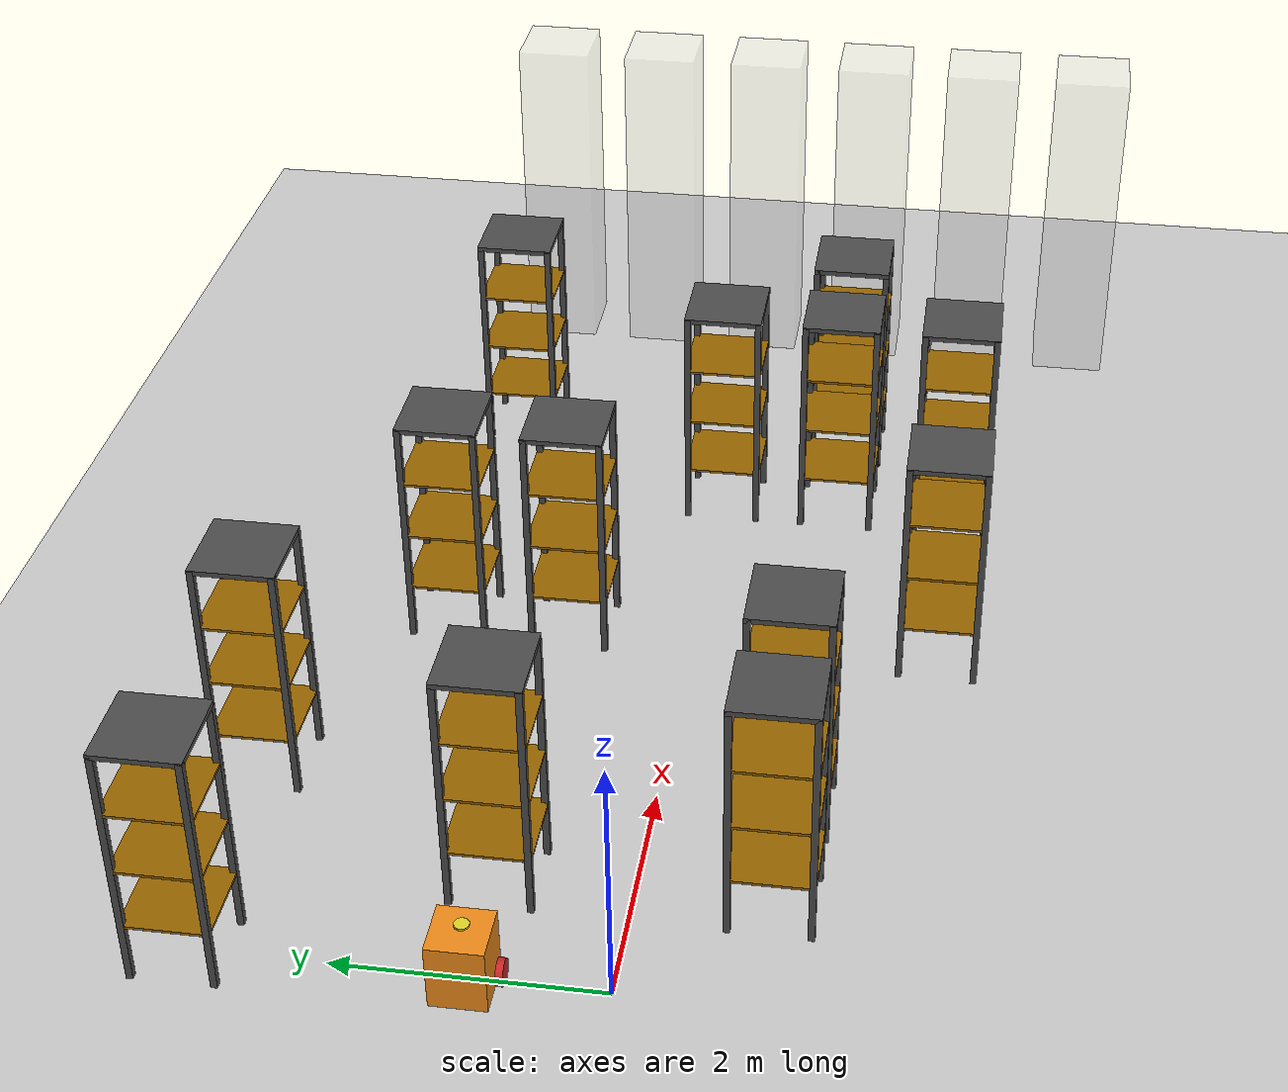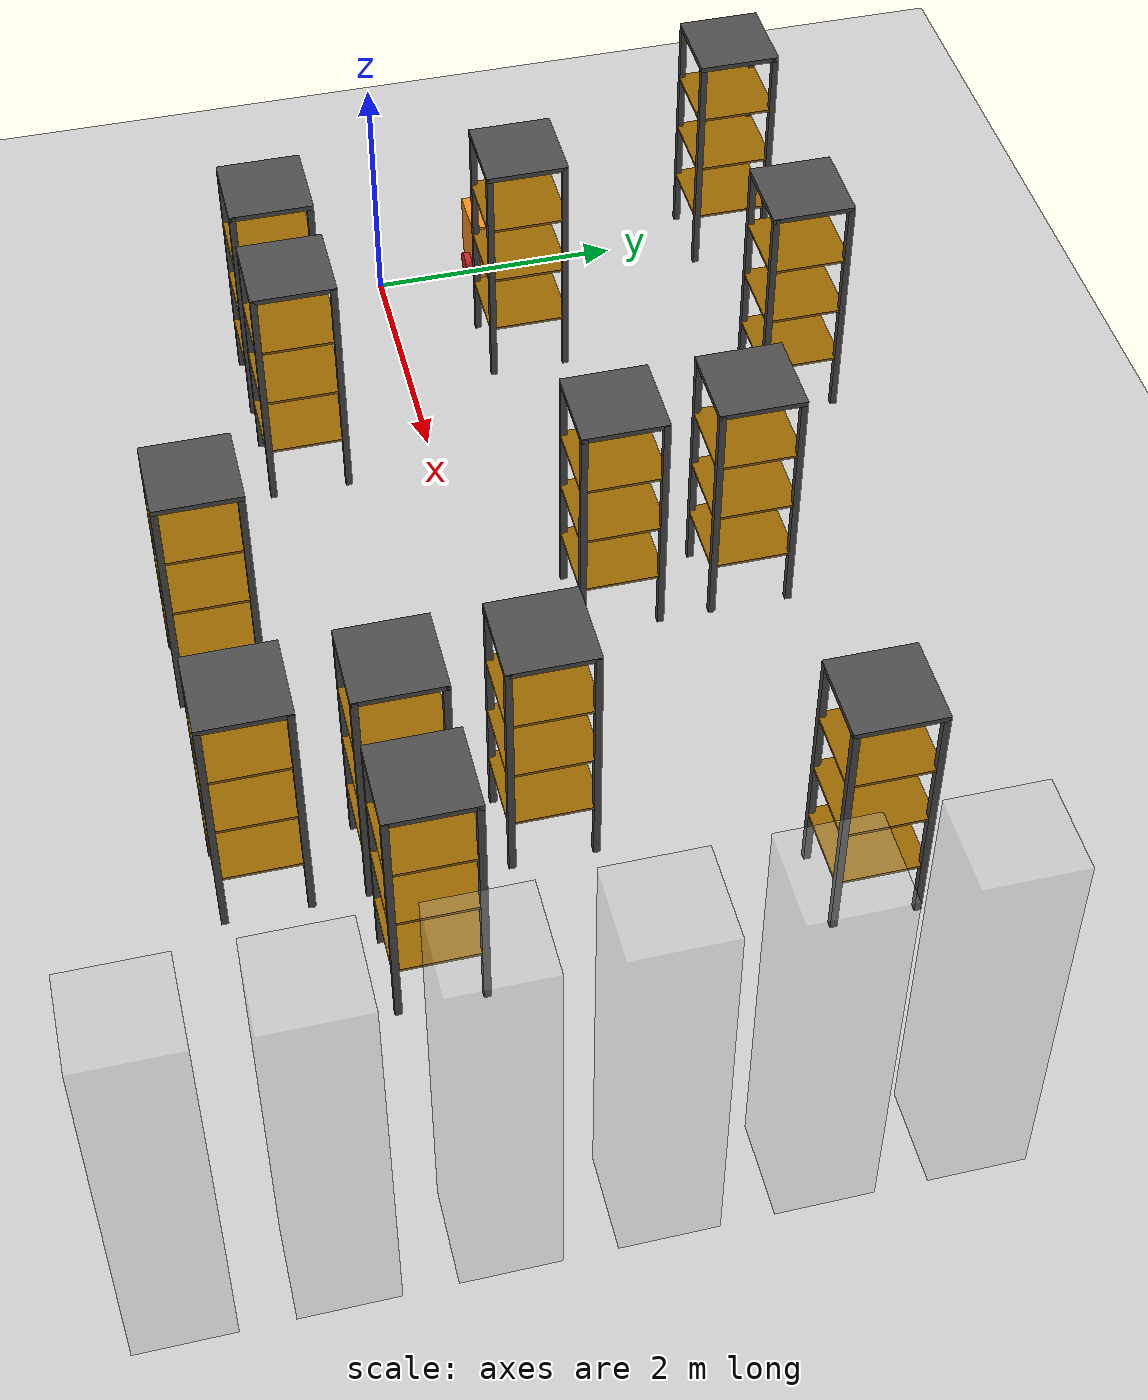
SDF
<sdf version="1.6">
 <world name="default">
  <model name="ground_plane">
   <static>1</static>
   <link name="link">
    <collision name="collision">
     <geometry><plane><normal>0 0 1</normal><size>50 50</size></plane></geometry>
     <surface><friction><ode><mu>100</mu><mu2>50</mu2></ode></friction></surface>
    </collision>
    <visual name="visual">
     <cast_shadows>0</cast_shadows>
     <geometry><plane><normal>0 0 1</normal><size>100 100</size></plane></geometry>
     <material>
      <script><uri>file://media/materials/scripts/gazebo.material</uri><name>Gazebo/Grey</name></script>
     </material>
    </visual>
    <velocity_decay><linear>0</linear><angular>0</angular></velocity_decay>
   </link>
  </model>
  <model name="pole_6_18">
   <static>1</static>
   <link name="main_block">
    <pose>0 0 1.5 0 -0 0</pose>
    <collision name="collision"><geometry><box><size>0.65 0.65 3</size></box></geometry></collision>
    <visual name="visual">
     <geometry><box><size>0.65 0.65 3</size></box></geometry>
     <material><ambient>0.5 0.5 0.5 0.25</ambient><diffuse>0.75 0.75 0.75 0.25</diffuse></material>
    </visual>
   </link>
   <pose>9 -3 0 0 -0 0</pose>
  </model>
  <model name="warehouse_shelf_7_13">
   <static>1</static>
   <link name="main_block">
    <pose>0 0 1.25 0 -0 0</pose>
    <collision name="collision"><geometry><box><size>0.65 0.65 1.5</size></box></geometry></collision>
   </link>
   <link name="leg_1">
    <pose>0.3 0.3 1 0 -0 0</pose>
    <collision name="collision"><geometry><box><size>0.05 0.05 2</size></box></geometry></collision>
    <visual name="visual">
     <geometry><box><size>0.05 0.05 2</size></box></geometry>
     <material><ambient>0.2 0.2 0.2 1</ambient><diffuse>0.3 0.3 0.3 1</diffuse></material>
    </visual>
   </link>
   <link name="leg_2">
    <pose>-0.3 0.3 1 0 -0 0</pose>
    <collision name="collision"><geometry><box><size>0.05 0.05 2</size></box></geometry></collision>
    <visual name="visual">
     <geometry><box><size>0.05 0.05 2</size></box></geometry>
     <material><ambient>0.2 0.2 0.2 1</ambient><diffuse>0.3 0.3 0.3 1</diffuse></material>
    </visual>
   </link>
   <link name="leg_3">
    <pose>-0.3 -0.3 1 0 -0 0</pose>
    <collision name="collision"><geometry><box><size>0.05 0.05 2</size></box></geometry></collision>
    <visual name="visual">
     <geometry><box><size>0.05 0.05 2</size></box></geometry>
     <material><ambient>0.2 0.2 0.2 1</ambient><diffuse>0.3 0.3 0.3 1</diffuse></material>
    </visual>
   </link>
   <link name="leg_4">
    <pose>0.3 -0.3 1 0 -0 0</pose>
    <collision name="collision"><geometry><box><size>0.05 0.05 2</size></box></geometry></collision>
    <visual name="visual">
     <geometry><box><size>0.05 0.05 2</size></box></geometry>
     <material><ambient>0.2 0.2 0.2 1</ambient><diffuse>0.3 0.3 0.3 1</diffuse></material>
    </visual>
   </link>
   <link name="shelf_0">
    <pose>0 0 0.49 0 -0 0</pose>
    <visual name="visual">
     <geometry><box><size>0.649 0.649 0.02</size></box></geometry>
     <material><ambient>0.2 0.05 0 1</ambient><diffuse>0.6 0.4 0 1</diffuse></material>
    </visual>
   </link>
   <link name="shelf_1">
    <pose>0 0 0.99 0 -0 0</pose>
    <visual name="visual">
     <geometry><box><size>0.649 0.649 0.02</size></box></geometry>
     <material><ambient>0.2 0.05 0 1</ambient><diffuse>0.6 0.4 0 1</diffuse></material>
    </visual>
   </link>
   <link name="shelf_2">
    <pose>0 0 1.49 0 -0 0</pose>
    <visual name="visual">
     <geometry><box><size>0.649 0.649 0.02</size></box></geometry>
     <material><ambient>0.2 0.05 0 1</ambient><diffuse>0.6 0.4 0 1</diffuse></material>
    </visual>
   </link>
   <link name="shelf_top">
    <pose>0 0 1.99 0 -0 0</pose>
    <visual name="visual">
     <geometry><box><size>0.65 0.65 0.04</size></box></geometry>
     <material><ambient>0.2 0.2 0.2 1</ambient><diffuse>0.3 0.3 0.3 1</diffuse></material>
    </visual>
   </link>
   <pose>4 -2 0 0 -0 0</pose>
  </model>
  <model name="warehouse_shelf_7_15">
   <static>1</static>
   <link name="main_block">
    <pose>0 0 1.25 0 -0 0</pose>
    <collision name="collision"><geometry><box><size>0.65 0.65 1.5</size></box></geometry></collision>
   </link>
   <link name="leg_1">
    <pose>0.3 0.3 1 0 -0 0</pose>
    <collision name="collision"><geometry><box><size>0.05 0.05 2</size></box></geometry></collision>
    <visual name="visual">
     <geometry><box><size>0.05 0.05 2</size></box></geometry>
     <material><ambient>0.2 0.2 0.2 1</ambient><diffuse>0.3 0.3 0.3 1</diffuse></material>
    </visual>
   </link>
   <link name="leg_2">
    <pose>-0.3 0.3 1 0 -0 0</pose>
    <collision name="collision"><geometry><box><size>0.05 0.05 2</size></box></geometry></collision>
    <visual name="visual">
     <geometry><box><size>0.05 0.05 2</size></box></geometry>
     <material><ambient>0.2 0.2 0.2 1</ambient><diffuse>0.3 0.3 0.3 1</diffuse></material>
    </visual>
   </link>
   <link name="leg_3">
    <pose>-0.3 -0.3 1 0 -0 0</pose>
    <collision name="collision"><geometry><box><size>0.05 0.05 2</size></box></geometry></collision>
    <visual name="visual">
     <geometry><box><size>0.05 0.05 2</size></box></geometry>
     <material><ambient>0.2 0.2 0.2 1</ambient><diffuse>0.3 0.3 0.3 1</diffuse></material>
    </visual>
   </link>
   <link name="leg_4">
    <pose>0.3 -0.3 1 0 -0 0</pose>
    <collision name="collision"><geometry><box><size>0.05 0.05 2</size></box></geometry></collision>
    <visual name="visual">
     <geometry><box><size>0.05 0.05 2</size></box></geometry>
     <material><ambient>0.2 0.2 0.2 1</ambient><diffuse>0.3 0.3 0.3 1</diffuse></material>
    </visual>
   </link>
   <link name="shelf_0">
    <pose>0 0 0.49 0 -0 0</pose>
    <visual name="visual">
     <geometry><box><size>0.649 0.649 0.02</size></box></geometry>
     <material><ambient>0.2 0.05 0 1</ambient><diffuse>0.6 0.4 0 1</diffuse></material>
    </visual>
   </link>
   <link name="shelf_1">
    <pose>0 0 0.99 0 -0 0</pose>
    <visual name="visual">
     <geometry><box><size>0.649 0.649 0.02</size></box></geometry>
     <material><ambient>0.2 0.05 0 1</ambient><diffuse>0.6 0.4 0 1</diffuse></material>
    </visual>
   </link>
   <link name="shelf_2">
    <pose>0 0 1.49 0 -0 0</pose>
    <visual name="visual">
     <geometry><box><size>0.649 0.649 0.02</size></box></geometry>
     <material><ambient>0.2 0.05 0 1</ambient><diffuse>0.6 0.4 0 1</diffuse></material>
    </visual>
   </link>
   <link name="shelf_top">
    <pose>0 0 1.99 0 -0 0</pose>
    <visual name="visual">
     <geometry><box><size>0.65 0.65 0.04</size></box></geometry>
     <material><ambient>0.2 0.2 0.2 1</ambient><diffuse>0.3 0.3 0.3 1</diffuse></material>
    </visual>
   </link>
   <pose>6 -2 0 0 -0 0</pose>
  </model>
  <model name="pole_7_18">
   <static>1</static>
   <link name="main_block">
    <pose>0 0 1.5 0 -0 0</pose>
    <collision name="collision"><geometry><box><size>0.65 0.65 3</size></box></geometry></collision>
    <visual name="visual">
     <geometry><box><size>0.65 0.65 3</size></box></geometry>
     <material><ambient>0.5 0.5 0.5 0.25</ambient><diffuse>0.75 0.75 0.75 0.25</diffuse></material>
    </visual>
   </link>
   <pose>9 -2 0 0 -0 0</pose>
  </model>
  <model name="warehouse_shelf_8_10">
   <static>1</static>
   <link name="main_block">
    <pose>0 0 1.25 0 -0 0</pose>
    <collision name="collision"><geometry><box><size>0.65 0.65 1.5</size></box></geometry></collision>
   </link>
   <link name="leg_1">
    <pose>0.3 0.3 1 0 -0 0</pose>
    <collision name="collision"><geometry><box><size>0.05 0.05 2</size></box></geometry></collision>
    <visual name="visual">
     <geometry><box><size>0.05 0.05 2</size></box></geometry>
     <material><ambient>0.2 0.2 0.2 1</ambient><diffuse>0.3 0.3 0.3 1</diffuse></material>
    </visual>
   </link>
   <link name="leg_2">
    <pose>-0.3 0.3 1 0 -0 0</pose>
    <collision name="collision"><geometry><box><size>0.05 0.05 2</size></box></geometry></collision>
    <visual name="visual">
     <geometry><box><size>0.05 0.05 2</size></box></geometry>
     <material><ambient>0.2 0.2 0.2 1</ambient><diffuse>0.3 0.3 0.3 1</diffuse></material>
    </visual>
   </link>
   <link name="leg_3">
    <pose>-0.3 -0.3 1 0 -0 0</pose>
    <collision name="collision"><geometry><box><size>0.05 0.05 2</size></box></geometry></collision>
    <visual name="visual">
     <geometry><box><size>0.05 0.05 2</size></box></geometry>
     <material><ambient>0.2 0.2 0.2 1</ambient><diffuse>0.3 0.3 0.3 1</diffuse></material>
    </visual>
   </link>
   <link name="leg_4">
    <pose>0.3 -0.3 1 0 -0 0</pose>
    <collision name="collision"><geometry><box><size>0.05 0.05 2</size></box></geometry></collision>
    <visual name="visual">
     <geometry><box><size>0.05 0.05 2</size></box></geometry>
     <material><ambient>0.2 0.2 0.2 1</ambient><diffuse>0.3 0.3 0.3 1</diffuse></material>
    </visual>
   </link>
   <link name="shelf_0">
    <pose>0 0 0.49 0 -0 0</pose>
    <visual name="visual">
     <geometry><box><size>0.649 0.649 0.02</size></box></geometry>
     <material><ambient>0.2 0.05 0 1</ambient><diffuse>0.6 0.4 0 1</diffuse></material>
    </visual>
   </link>
   <link name="shelf_1">
    <pose>0 0 0.99 0 -0 0</pose>
    <visual name="visual">
     <geometry><box><size>0.649 0.649 0.02</size></box></geometry>
     <material><ambient>0.2 0.05 0 1</ambient><diffuse>0.6 0.4 0 1</diffuse></material>
    </visual>
   </link>
   <link name="shelf_2">
    <pose>0 0 1.49 0 -0 0</pose>
    <visual name="visual">
     <geometry><box><size>0.649 0.649 0.02</size></box></geometry>
     <material><ambient>0.2 0.05 0 1</ambient><diffuse>0.6 0.4 0 1</diffuse></material>
    </visual>
   </link>
   <link name="shelf_top">
    <pose>0 0 1.99 0 -0 0</pose>
    <visual name="visual">
     <geometry><box><size>0.65 0.65 0.04</size></box></geometry>
     <material><ambient>0.2 0.2 0.2 1</ambient><diffuse>0.3 0.3 0.3 1</diffuse></material>
    </visual>
   </link>
   <pose>1 -1 0 0 -0 0</pose>
  </model>
  <model name="warehouse_shelf_8_11">
   <static>1</static>
   <link name="main_block">
    <pose>0 0 1.25 0 -0 0</pose>
    <collision name="collision"><geometry><box><size>0.65 0.65 1.5</size></box></geometry></collision>
   </link>
   <link name="leg_1">
    <pose>0.3 0.3 1 0 -0 0</pose>
    <collision name="collision"><geometry><box><size>0.05 0.05 2</size></box></geometry></collision>
    <visual name="visual">
     <geometry><box><size>0.05 0.05 2</size></box></geometry>
     <material><ambient>0.2 0.2 0.2 1</ambient><diffuse>0.3 0.3 0.3 1</diffuse></material>
    </visual>
   </link>
   <link name="leg_2">
    <pose>-0.3 0.3 1 0 -0 0</pose>
    <collision name="collision"><geometry><box><size>0.05 0.05 2</size></box></geometry></collision>
    <visual name="visual">
     <geometry><box><size>0.05 0.05 2</size></box></geometry>
     <material><ambient>0.2 0.2 0.2 1</ambient><diffuse>0.3 0.3 0.3 1</diffuse></material>
    </visual>
   </link>
   <link name="leg_3">
    <pose>-0.3 -0.3 1 0 -0 0</pose>
    <collision name="collision"><geometry><box><size>0.05 0.05 2</size></box></geometry></collision>
    <visual name="visual">
     <geometry><box><size>0.05 0.05 2</size></box></geometry>
     <material><ambient>0.2 0.2 0.2 1</ambient><diffuse>0.3 0.3 0.3 1</diffuse></material>
    </visual>
   </link>
   <link name="leg_4">
    <pose>0.3 -0.3 1 0 -0 0</pose>
    <collision name="collision"><geometry><box><size>0.05 0.05 2</size></box></geometry></collision>
    <visual name="visual">
     <geometry><box><size>0.05 0.05 2</size></box></geometry>
     <material><ambient>0.2 0.2 0.2 1</ambient><diffuse>0.3 0.3 0.3 1</diffuse></material>
    </visual>
   </link>
   <link name="shelf_0">
    <pose>0 0 0.49 0 -0 0</pose>
    <visual name="visual">
     <geometry><box><size>0.649 0.649 0.02</size></box></geometry>
     <material><ambient>0.2 0.05 0 1</ambient><diffuse>0.6 0.4 0 1</diffuse></material>
    </visual>
   </link>
   <link name="shelf_1">
    <pose>0 0 0.99 0 -0 0</pose>
    <visual name="visual">
     <geometry><box><size>0.649 0.649 0.02</size></box></geometry>
     <material><ambient>0.2 0.05 0 1</ambient><diffuse>0.6 0.4 0 1</diffuse></material>
    </visual>
   </link>
   <link name="shelf_2">
    <pose>0 0 1.49 0 -0 0</pose>
    <visual name="visual">
     <geometry><box><size>0.649 0.649 0.02</size></box></geometry>
     <material><ambient>0.2 0.05 0 1</ambient><diffuse>0.6 0.4 0 1</diffuse></material>
    </visual>
   </link>
   <link name="shelf_top">
    <pose>0 0 1.99 0 -0 0</pose>
    <visual name="visual">
     <geometry><box><size>0.65 0.65 0.04</size></box></geometry>
     <material><ambient>0.2 0.2 0.2 1</ambient><diffuse>0.3 0.3 0.3 1</diffuse></material>
    </visual>
   </link>
   <pose>2 -1 0 0 -0 0</pose>
  </model>
  <model name="warehouse_shelf_8_15">
   <static>1</static>
   <link name="main_block">
    <pose>0 0 1.25 0 -0 0</pose>
    <collision name="collision"><geometry><box><size>0.65 0.65 1.5</size></box></geometry></collision>
   </link>
   <link name="leg_1">
    <pose>0.3 0.3 1 0 -0 0</pose>
    <collision name="collision"><geometry><box><size>0.05 0.05 2</size></box></geometry></collision>
    <visual name="visual">
     <geometry><box><size>0.05 0.05 2</size></box></geometry>
     <material><ambient>0.2 0.2 0.2 1</ambient><diffuse>0.3 0.3 0.3 1</diffuse></material>
    </visual>
   </link>
   <link name="leg_2">
    <pose>-0.3 0.3 1 0 -0 0</pose>
    <collision name="collision"><geometry><box><size>0.05 0.05 2</size></box></geometry></collision>
    <visual name="visual">
     <geometry><box><size>0.05 0.05 2</size></box></geometry>
     <material><ambient>0.2 0.2 0.2 1</ambient><diffuse>0.3 0.3 0.3 1</diffuse></material>
    </visual>
   </link>
   <link name="leg_3">
    <pose>-0.3 -0.3 1 0 -0 0</pose>
    <collision name="collision"><geometry><box><size>0.05 0.05 2</size></box></geometry></collision>
    <visual name="visual">
     <geometry><box><size>0.05 0.05 2</size></box></geometry>
     <material><ambient>0.2 0.2 0.2 1</ambient><diffuse>0.3 0.3 0.3 1</diffuse></material>
    </visual>
   </link>
   <link name="leg_4">
    <pose>0.3 -0.3 1 0 -0 0</pose>
    <collision name="collision"><geometry><box><size>0.05 0.05 2</size></box></geometry></collision>
    <visual name="visual">
     <geometry><box><size>0.05 0.05 2</size></box></geometry>
     <material><ambient>0.2 0.2 0.2 1</ambient><diffuse>0.3 0.3 0.3 1</diffuse></material>
    </visual>
   </link>
   <link name="shelf_0">
    <pose>0 0 0.49 0 -0 0</pose>
    <visual name="visual">
     <geometry><box><size>0.649 0.649 0.02</size></box></geometry>
     <material><ambient>0.2 0.05 0 1</ambient><diffuse>0.6 0.4 0 1</diffuse></material>
    </visual>
   </link>
   <link name="shelf_1">
    <pose>0 0 0.99 0 -0 0</pose>
    <visual name="visual">
     <geometry><box><size>0.649 0.649 0.02</size></box></geometry>
     <material><ambient>0.2 0.05 0 1</ambient><diffuse>0.6 0.4 0 1</diffuse></material>
    </visual>
   </link>
   <link name="shelf_2">
    <pose>0 0 1.49 0 -0 0</pose>
    <visual name="visual">
     <geometry><box><size>0.649 0.649 0.02</size></box></geometry>
     <material><ambient>0.2 0.05 0 1</ambient><diffuse>0.6 0.4 0 1</diffuse></material>
    </visual>
   </link>
   <link name="shelf_top">
    <pose>0 0 1.99 0 -0 0</pose>
    <visual name="visual">
     <geometry><box><size>0.65 0.65 0.04</size></box></geometry>
     <material><ambient>0.2 0.2 0.2 1</ambient><diffuse>0.3 0.3 0.3 1</diffuse></material>
    </visual>
   </link>
   <pose>6 -1 0 0 -0 0</pose>
  </model>
  <model name="warehouse_shelf_8_16">
   <static>1</static>
   <link name="main_block">
    <pose>0 0 1.25 0 -0 0</pose>
    <collision name="collision"><geometry><box><size>0.65 0.65 1.5</size></box></geometry></collision>
   </link>
   <link name="leg_1">
    <pose>0.3 0.3 1 0 -0 0</pose>
    <collision name="collision"><geometry><box><size>0.05 0.05 2</size></box></geometry></collision>
    <visual name="visual">
     <geometry><box><size>0.05 0.05 2</size></box></geometry>
     <material><ambient>0.2 0.2 0.2 1</ambient><diffuse>0.3 0.3 0.3 1</diffuse></material>
    </visual>
   </link>
   <link name="leg_2">
    <pose>-0.3 0.3 1 0 -0 0</pose>
    <collision name="collision"><geometry><box><size>0.05 0.05 2</size></box></geometry></collision>
    <visual name="visual">
     <geometry><box><size>0.05 0.05 2</size></box></geometry>
     <material><ambient>0.2 0.2 0.2 1</ambient><diffuse>0.3 0.3 0.3 1</diffuse></material>
    </visual>
   </link>
   <link name="leg_3">
    <pose>-0.3 -0.3 1 0 -0 0</pose>
    <collision name="collision"><geometry><box><size>0.05 0.05 2</size></box></geometry></collision>
    <visual name="visual">
     <geometry><box><size>0.05 0.05 2</size></box></geometry>
     <material><ambient>0.2 0.2 0.2 1</ambient><diffuse>0.3 0.3 0.3 1</diffuse></material>
    </visual>
   </link>
   <link name="leg_4">
    <pose>0.3 -0.3 1 0 -0 0</pose>
    <collision name="collision"><geometry><box><size>0.05 0.05 2</size></box></geometry></collision>
    <visual name="visual">
     <geometry><box><size>0.05 0.05 2</size></box></geometry>
     <material><ambient>0.2 0.2 0.2 1</ambient><diffuse>0.3 0.3 0.3 1</diffuse></material>
    </visual>
   </link>
   <link name="shelf_0">
    <pose>0 0 0.49 0 -0 0</pose>
    <visual name="visual">
     <geometry><box><size>0.649 0.649 0.02</size></box></geometry>
     <material><ambient>0.2 0.05 0 1</ambient><diffuse>0.6 0.4 0 1</diffuse></material>
    </visual>
   </link>
   <link name="shelf_1">
    <pose>0 0 0.99 0 -0 0</pose>
    <visual name="visual">
     <geometry><box><size>0.649 0.649 0.02</size></box></geometry>
     <material><ambient>0.2 0.05 0 1</ambient><diffuse>0.6 0.4 0 1</diffuse></material>
    </visual>
   </link>
   <link name="shelf_2">
    <pose>0 0 1.49 0 -0 0</pose>
    <visual name="visual">
     <geometry><box><size>0.649 0.649 0.02</size></box></geometry>
     <material><ambient>0.2 0.05 0 1</ambient><diffuse>0.6 0.4 0 1</diffuse></material>
    </visual>
   </link>
   <link name="shelf_top">
    <pose>0 0 1.99 0 -0 0</pose>
    <visual name="visual">
     <geometry><box><size>0.65 0.65 0.04</size></box></geometry>
     <material><ambient>0.2 0.2 0.2 1</ambient><diffuse>0.3 0.3 0.3 1</diffuse></material>
    </visual>
   </link>
   <pose>7 -1 0 0 -0 0</pose>
  </model>
  <model name="pole_8_18">
   <static>1</static>
   <link name="main_block">
    <pose>0 0 1.5 0 -0 0</pose>
    <collision name="collision"><geometry><box><size>0.65 0.65 3</size></box></geometry></collision>
    <visual name="visual">
     <geometry><box><size>0.65 0.65 3</size></box></geometry>
     <material><ambient>0.5 0.5 0.5 0.25</ambient><diffuse>0.75 0.75 0.75 0.25</diffuse></material>
    </visual>
   </link>
   <pose>9 -1 0 0 -0 0</pose>
  </model>
  <model name="warehouse_shelf_9_15">
   <static>1</static>
   <link name="main_block">
    <pose>0 0 1.25 0 -0 0</pose>
    <collision name="collision"><geometry><box><size>0.65 0.65 1.5</size></box></geometry></collision>
   </link>
   <link name="leg_1">
    <pose>0.3 0.3 1 0 -0 0</pose>
    <collision name="collision"><geometry><box><size>0.05 0.05 2</size></box></geometry></collision>
    <visual name="visual">
     <geometry><box><size>0.05 0.05 2</size></box></geometry>
     <material><ambient>0.2 0.2 0.2 1</ambient><diffuse>0.3 0.3 0.3 1</diffuse></material>
    </visual>
   </link>
   <link name="leg_2">
    <pose>-0.3 0.3 1 0 -0 0</pose>
    <collision name="collision"><geometry><box><size>0.05 0.05 2</size></box></geometry></collision>
    <visual name="visual">
     <geometry><box><size>0.05 0.05 2</size></box></geometry>
     <material><ambient>0.2 0.2 0.2 1</ambient><diffuse>0.3 0.3 0.3 1</diffuse></material>
    </visual>
   </link>
   <link name="leg_3">
    <pose>-0.3 -0.3 1 0 -0 0</pose>
    <collision name="collision"><geometry><box><size>0.05 0.05 2</size></box></geometry></collision>
    <visual name="visual">
     <geometry><box><size>0.05 0.05 2</size></box></geometry>
     <material><ambient>0.2 0.2 0.2 1</ambient><diffuse>0.3 0.3 0.3 1</diffuse></material>
    </visual>
   </link>
   <link name="leg_4">
    <pose>0.3 -0.3 1 0 -0 0</pose>
    <collision name="collision"><geometry><box><size>0.05 0.05 2</size></box></geometry></collision>
    <visual name="visual">
     <geometry><box><size>0.05 0.05 2</size></box></geometry>
     <material><ambient>0.2 0.2 0.2 1</ambient><diffuse>0.3 0.3 0.3 1</diffuse></material>
    </visual>
   </link>
   <link name="shelf_0">
    <pose>0 0 0.49 0 -0 0</pose>
    <visual name="visual">
     <geometry><box><size>0.649 0.649 0.02</size></box></geometry>
     <material><ambient>0.2 0.05 0 1</ambient><diffuse>0.6 0.4 0 1</diffuse></material>
    </visual>
   </link>
   <link name="shelf_1">
    <pose>0 0 0.99 0 -0 0</pose>
    <visual name="visual">
     <geometry><box><size>0.649 0.649 0.02</size></box></geometry>
     <material><ambient>0.2 0.05 0 1</ambient><diffuse>0.6 0.4 0 1</diffuse></material>
    </visual>
   </link>
   <link name="shelf_2">
    <pose>0 0 1.49 0 -0 0</pose>
    <visual name="visual">
     <geometry><box><size>0.649 0.649 0.02</size></box></geometry>
     <material><ambient>0.2 0.05 0 1</ambient><diffuse>0.6 0.4 0 1</diffuse></material>
    </visual>
   </link>
   <link name="shelf_top">
    <pose>0 0 1.99 0 -0 0</pose>
    <visual name="visual">
     <geometry><box><size>0.65 0.65 0.04</size></box></geometry>
     <material><ambient>0.2 0.2 0.2 1</ambient><diffuse>0.3 0.3 0.3 1</diffuse></material>
    </visual>
   </link>
   <pose>6 0 0 0 -0 0</pose>
  </model>
  <model name="pole_9_18">
   <static>1</static>
   <link name="main_block">
    <pose>0 0 1.5 0 -0 0</pose>
    <collision name="collision"><geometry><box><size>0.65 0.65 3</size></box></geometry></collision>
    <visual name="visual">
     <geometry><box><size>0.65 0.65 3</size></box></geometry>
     <material><ambient>0.5 0.5 0.5 0.25</ambient><diffuse>0.75 0.75 0.75 0.25</diffuse></material>
    </visual>
   </link>
   <pose>9 0 0 0 -0 0</pose>
  </model>
  <model name="warehouse_shelf_10_10">
   <static>1</static>
   <link name="main_block">
    <pose>0 0 1.25 0 -0 0</pose>
    <collision name="collision"><geometry><box><size>0.65 0.65 1.5</size></box></geometry></collision>
   </link>
   <link name="leg_1">
    <pose>0.3 0.3 1 0 -0 0</pose>
    <collision name="collision"><geometry><box><size>0.05 0.05 2</size></box></geometry></collision>
    <visual name="visual">
     <geometry><box><size>0.05 0.05 2</size></box></geometry>
     <material><ambient>0.2 0.2 0.2 1</ambient><diffuse>0.3 0.3 0.3 1</diffuse></material>
    </visual>
   </link>
   <link name="leg_2">
    <pose>-0.3 0.3 1 0 -0 0</pose>
    <collision name="collision"><geometry><box><size>0.05 0.05 2</size></box></geometry></collision>
    <visual name="visual">
     <geometry><box><size>0.05 0.05 2</size></box></geometry>
     <material><ambient>0.2 0.2 0.2 1</ambient><diffuse>0.3 0.3 0.3 1</diffuse></material>
    </visual>
   </link>
   <link name="leg_3">
    <pose>-0.3 -0.3 1 0 -0 0</pose>
    <collision name="collision"><geometry><box><size>0.05 0.05 2</size></box></geometry></collision>
    <visual name="visual">
     <geometry><box><size>0.05 0.05 2</size></box></geometry>
     <material><ambient>0.2 0.2 0.2 1</ambient><diffuse>0.3 0.3 0.3 1</diffuse></material>
    </visual>
   </link>
   <link name="leg_4">
    <pose>0.3 -0.3 1 0 -0 0</pose>
    <collision name="collision"><geometry><box><size>0.05 0.05 2</size></box></geometry></collision>
    <visual name="visual">
     <geometry><box><size>0.05 0.05 2</size></box></geometry>
     <material><ambient>0.2 0.2 0.2 1</ambient><diffuse>0.3 0.3 0.3 1</diffuse></material>
    </visual>
   </link>
   <link name="shelf_0">
    <pose>0 0 0.49 0 -0 0</pose>
    <visual name="visual">
     <geometry><box><size>0.649 0.649 0.02</size></box></geometry>
     <material><ambient>0.2 0.05 0 1</ambient><diffuse>0.6 0.4 0 1</diffuse></material>
    </visual>
   </link>
   <link name="shelf_1">
    <pose>0 0 0.99 0 -0 0</pose>
    <visual name="visual">
     <geometry><box><size>0.649 0.649 0.02</size></box></geometry>
     <material><ambient>0.2 0.05 0 1</ambient><diffuse>0.6 0.4 0 1</diffuse></material>
    </visual>
   </link>
   <link name="shelf_2">
    <pose>0 0 1.49 0 -0 0</pose>
    <visual name="visual">
     <geometry><box><size>0.649 0.649 0.02</size></box></geometry>
     <material><ambient>0.2 0.05 0 1</ambient><diffuse>0.6 0.4 0 1</diffuse></material>
    </visual>
   </link>
   <link name="shelf_top">
    <pose>0 0 1.99 0 -0 0</pose>
    <visual name="visual">
     <geometry><box><size>0.65 0.65 0.04</size></box></geometry>
     <material><ambient>0.2 0.2 0.2 1</ambient><diffuse>0.3 0.3 0.3 1</diffuse></material>
    </visual>
   </link>
   <pose>1 1 0 0 -0 0</pose>
  </model>
  <model name="warehouse_shelf_10_13">
   <static>1</static>
   <link name="main_block">
    <pose>0 0 1.25 0 -0 0</pose>
    <collision name="collision"><geometry><box><size>0.65 0.65 1.5</size></box></geometry></collision>
   </link>
   <link name="leg_1">
    <pose>0.3 0.3 1 0 -0 0</pose>
    <collision name="collision"><geometry><box><size>0.05 0.05 2</size></box></geometry></collision>
    <visual name="visual">
     <geometry><box><size>0.05 0.05 2</size></box></geometry>
     <material><ambient>0.2 0.2 0.2 1</ambient><diffuse>0.3 0.3 0.3 1</diffuse></material>
    </visual>
   </link>
   <link name="leg_2">
    <pose>-0.3 0.3 1 0 -0 0</pose>
    <collision name="collision"><geometry><box><size>0.05 0.05 2</size></box></geometry></collision>
    <visual name="visual">
     <geometry><box><size>0.05 0.05 2</size></box></geometry>
     <material><ambient>0.2 0.2 0.2 1</ambient><diffuse>0.3 0.3 0.3 1</diffuse></material>
    </visual>
   </link>
   <link name="leg_3">
    <pose>-0.3 -0.3 1 0 -0 0</pose>
    <collision name="collision"><geometry><box><size>0.05 0.05 2</size></box></geometry></collision>
    <visual name="visual">
     <geometry><box><size>0.05 0.05 2</size></box></geometry>
     <material><ambient>0.2 0.2 0.2 1</ambient><diffuse>0.3 0.3 0.3 1</diffuse></material>
    </visual>
   </link>
   <link name="leg_4">
    <pose>0.3 -0.3 1 0 -0 0</pose>
    <collision name="collision"><geometry><box><size>0.05 0.05 2</size></box></geometry></collision>
    <visual name="visual">
     <geometry><box><size>0.05 0.05 2</size></box></geometry>
     <material><ambient>0.2 0.2 0.2 1</ambient><diffuse>0.3 0.3 0.3 1</diffuse></material>
    </visual>
   </link>
   <link name="shelf_0">
    <pose>0 0 0.49 0 -0 0</pose>
    <visual name="visual">
     <geometry><box><size>0.649 0.649 0.02</size></box></geometry>
     <material><ambient>0.2 0.05 0 1</ambient><diffuse>0.6 0.4 0 1</diffuse></material>
    </visual>
   </link>
   <link name="shelf_1">
    <pose>0 0 0.99 0 -0 0</pose>
    <visual name="visual">
     <geometry><box><size>0.649 0.649 0.02</size></box></geometry>
     <material><ambient>0.2 0.05 0 1</ambient><diffuse>0.6 0.4 0 1</diffuse></material>
    </visual>
   </link>
   <link name="shelf_2">
    <pose>0 0 1.49 0 -0 0</pose>
    <visual name="visual">
     <geometry><box><size>0.649 0.649 0.02</size></box></geometry>
     <material><ambient>0.2 0.05 0 1</ambient><diffuse>0.6 0.4 0 1</diffuse></material>
    </visual>
   </link>
   <link name="shelf_top">
    <pose>0 0 1.99 0 -0 0</pose>
    <visual name="visual">
     <geometry><box><size>0.65 0.65 0.04</size></box></geometry>
     <material><ambient>0.2 0.2 0.2 1</ambient><diffuse>0.3 0.3 0.3 1</diffuse></material>
    </visual>
   </link>
   <pose>4 1 0 0 -0 0</pose>
  </model>
  <model name="pole_10_18">
   <static>1</static>
   <link name="main_block">
    <pose>0 0 1.5 0 -0 0</pose>
    <collision name="collision"><geometry><box><size>0.65 0.65 3</size></box></geometry></collision>
    <visual name="visual">
     <geometry><box><size>0.65 0.65 3</size></box></geometry>
     <material><ambient>0.5 0.5 0.5 0.25</ambient><diffuse>0.75 0.75 0.75 0.25</diffuse></material>
    </visual>
   </link>
   <pose>9 1 0 0 -0 0</pose>
  </model>
  <model name="warehouse_shelf_11_13">
   <static>1</static>
   <link name="main_block">
    <pose>0 0 1.25 0 -0 0</pose>
    <collision name="collision"><geometry><box><size>0.65 0.65 1.5</size></box></geometry></collision>
   </link>
   <link name="leg_1">
    <pose>0.3 0.3 1 0 -0 0</pose>
    <collision name="collision"><geometry><box><size>0.05 0.05 2</size></box></geometry></collision>
    <visual name="visual">
     <geometry><box><size>0.05 0.05 2</size></box></geometry>
     <material><ambient>0.2 0.2 0.2 1</ambient><diffuse>0.3 0.3 0.3 1</diffuse></material>
    </visual>
   </link>
   <link name="leg_2">
    <pose>-0.3 0.3 1 0 -0 0</pose>
    <collision name="collision"><geometry><box><size>0.05 0.05 2</size></box></geometry></collision>
    <visual name="visual">
     <geometry><box><size>0.05 0.05 2</size></box></geometry>
     <material><ambient>0.2 0.2 0.2 1</ambient><diffuse>0.3 0.3 0.3 1</diffuse></material>
    </visual>
   </link>
   <link name="leg_3">
    <pose>-0.3 -0.3 1 0 -0 0</pose>
    <collision name="collision"><geometry><box><size>0.05 0.05 2</size></box></geometry></collision>
    <visual name="visual">
     <geometry><box><size>0.05 0.05 2</size></box></geometry>
     <material><ambient>0.2 0.2 0.2 1</ambient><diffuse>0.3 0.3 0.3 1</diffuse></material>
    </visual>
   </link>
   <link name="leg_4">
    <pose>0.3 -0.3 1 0 -0 0</pose>
    <collision name="collision"><geometry><box><size>0.05 0.05 2</size></box></geometry></collision>
    <visual name="visual">
     <geometry><box><size>0.05 0.05 2</size></box></geometry>
     <material><ambient>0.2 0.2 0.2 1</ambient><diffuse>0.3 0.3 0.3 1</diffuse></material>
    </visual>
   </link>
   <link name="shelf_0">
    <pose>0 0 0.49 0 -0 0</pose>
    <visual name="visual">
     <geometry><box><size>0.649 0.649 0.02</size></box></geometry>
     <material><ambient>0.2 0.05 0 1</ambient><diffuse>0.6 0.4 0 1</diffuse></material>
    </visual>
   </link>
   <link name="shelf_1">
    <pose>0 0 0.99 0 -0 0</pose>
    <visual name="visual">
     <geometry><box><size>0.649 0.649 0.02</size></box></geometry>
     <material><ambient>0.2 0.05 0 1</ambient><diffuse>0.6 0.4 0 1</diffuse></material>
    </visual>
   </link>
   <link name="shelf_2">
    <pose>0 0 1.49 0 -0 0</pose>
    <visual name="visual">
     <geometry><box><size>0.649 0.649 0.02</size></box></geometry>
     <material><ambient>0.2 0.05 0 1</ambient><diffuse>0.6 0.4 0 1</diffuse></material>
    </visual>
   </link>
   <link name="shelf_top">
    <pose>0 0 1.99 0 -0 0</pose>
    <visual name="visual">
     <geometry><box><size>0.65 0.65 0.04</size></box></geometry>
     <material><ambient>0.2 0.2 0.2 1</ambient><diffuse>0.3 0.3 0.3 1</diffuse></material>
    </visual>
   </link>
   <pose>4 2 0 0 -0 0</pose>
  </model>
  <model name="warehouse_shelf_11_16">
   <static>1</static>
   <link name="main_block">
    <pose>0 0 1.25 0 -0 0</pose>
    <collision name="collision"><geometry><box><size>0.65 0.65 1.5</size></box></geometry></collision>
   </link>
   <link name="leg_1">
    <pose>0.3 0.3 1 0 -0 0</pose>
    <collision name="collision"><geometry><box><size>0.05 0.05 2</size></box></geometry></collision>
    <visual name="visual">
     <geometry><box><size>0.05 0.05 2</size></box></geometry>
     <material><ambient>0.2 0.2 0.2 1</ambient><diffuse>0.3 0.3 0.3 1</diffuse></material>
    </visual>
   </link>
   <link name="leg_2">
    <pose>-0.3 0.3 1 0 -0 0</pose>
    <collision name="collision"><geometry><box><size>0.05 0.05 2</size></box></geometry></collision>
    <visual name="visual">
     <geometry><box><size>0.05 0.05 2</size></box></geometry>
     <material><ambient>0.2 0.2 0.2 1</ambient><diffuse>0.3 0.3 0.3 1</diffuse></material>
    </visual>
   </link>
   <link name="leg_3">
    <pose>-0.3 -0.3 1 0 -0 0</pose>
    <collision name="collision"><geometry><box><size>0.05 0.05 2</size></box></geometry></collision>
    <visual name="visual">
     <geometry><box><size>0.05 0.05 2</size></box></geometry>
     <material><ambient>0.2 0.2 0.2 1</ambient><diffuse>0.3 0.3 0.3 1</diffuse></material>
    </visual>
   </link>
   <link name="leg_4">
    <pose>0.3 -0.3 1 0 -0 0</pose>
    <collision name="collision"><geometry><box><size>0.05 0.05 2</size></box></geometry></collision>
    <visual name="visual">
     <geometry><box><size>0.05 0.05 2</size></box></geometry>
     <material><ambient>0.2 0.2 0.2 1</ambient><diffuse>0.3 0.3 0.3 1</diffuse></material>
    </visual>
   </link>
   <link name="shelf_0">
    <pose>0 0 0.49 0 -0 0</pose>
    <visual name="visual">
     <geometry><box><size>0.649 0.649 0.02</size></box></geometry>
     <material><ambient>0.2 0.05 0 1</ambient><diffuse>0.6 0.4 0 1</diffuse></material>
    </visual>
   </link>
   <link name="shelf_1">
    <pose>0 0 0.99 0 -0 0</pose>
    <visual name="visual">
     <geometry><box><size>0.649 0.649 0.02</size></box></geometry>
     <material><ambient>0.2 0.05 0 1</ambient><diffuse>0.6 0.4 0 1</diffuse></material>
    </visual>
   </link>
   <link name="shelf_2">
    <pose>0 0 1.49 0 -0 0</pose>
    <visual name="visual">
     <geometry><box><size>0.649 0.649 0.02</size></box></geometry>
     <material><ambient>0.2 0.05 0 1</ambient><diffuse>0.6 0.4 0 1</diffuse></material>
    </visual>
   </link>
   <link name="shelf_top">
    <pose>0 0 1.99 0 -0 0</pose>
    <visual name="visual">
     <geometry><box><size>0.65 0.65 0.04</size></box></geometry>
     <material><ambient>0.2 0.2 0.2 1</ambient><diffuse>0.3 0.3 0.3 1</diffuse></material>
    </visual>
   </link>
   <pose>7 2 0 0 -0 0</pose>
  </model>
  <model name="pole_11_18">
   <static>1</static>
   <link name="main_block">
    <pose>0 0 1.5 0 -0 0</pose>
    <collision name="collision"><geometry><box><size>0.65 0.65 3</size></box></geometry></collision>
    <visual name="visual">
     <geometry><box><size>0.65 0.65 3</size></box></geometry>
     <material><ambient>0.5 0.5 0.5 0.25</ambient><diffuse>0.75 0.75 0.75 0.25</diffuse></material>
    </visual>
   </link>
   <pose>9 2 0 0 -0 0</pose>
  </model>
  <model name="warehouse_shelf_12_9">
   <static>1</static>
   <link name="main_block">
    <pose>0 0 1.25 0 -0 0</pose>
    <collision name="collision"><geometry><box><size>0.65 0.65 1.5</size></box></geometry></collision>
   </link>
   <link name="leg_1">
    <pose>0.3 0.3 1 0 -0 0</pose>
    <collision name="collision"><geometry><box><size>0.05 0.05 2</size></box></geometry></collision>
    <visual name="visual">
     <geometry><box><size>0.05 0.05 2</size></box></geometry>
     <material><ambient>0.2 0.2 0.2 1</ambient><diffuse>0.3 0.3 0.3 1</diffuse></material>
    </visual>
   </link>
   <link name="leg_2">
    <pose>-0.3 0.3 1 0 -0 0</pose>
    <collision name="collision"><geometry><box><size>0.05 0.05 2</size></box></geometry></collision>
    <visual name="visual">
     <geometry><box><size>0.05 0.05 2</size></box></geometry>
     <material><ambient>0.2 0.2 0.2 1</ambient><diffuse>0.3 0.3 0.3 1</diffuse></material>
    </visual>
   </link>
   <link name="leg_3">
    <pose>-0.3 -0.3 1 0 -0 0</pose>
    <collision name="collision"><geometry><box><size>0.05 0.05 2</size></box></geometry></collision>
    <visual name="visual">
     <geometry><box><size>0.05 0.05 2</size></box></geometry>
     <material><ambient>0.2 0.2 0.2 1</ambient><diffuse>0.3 0.3 0.3 1</diffuse></material>
    </visual>
   </link>
   <link name="leg_4">
    <pose>0.3 -0.3 1 0 -0 0</pose>
    <collision name="collision"><geometry><box><size>0.05 0.05 2</size></box></geometry></collision>
    <visual name="visual">
     <geometry><box><size>0.05 0.05 2</size></box></geometry>
     <material><ambient>0.2 0.2 0.2 1</ambient><diffuse>0.3 0.3 0.3 1</diffuse></material>
    </visual>
   </link>
   <link name="shelf_0">
    <pose>0 0 0.49 0 -0 0</pose>
    <visual name="visual">
     <geometry><box><size>0.649 0.649 0.02</size></box></geometry>
     <material><ambient>0.2 0.05 0 1</ambient><diffuse>0.6 0.4 0 1</diffuse></material>
    </visual>
   </link>
   <link name="shelf_1">
    <pose>0 0 0.99 0 -0 0</pose>
    <visual name="visual">
     <geometry><box><size>0.649 0.649 0.02</size></box></geometry>
     <material><ambient>0.2 0.05 0 1</ambient><diffuse>0.6 0.4 0 1</diffuse></material>
    </visual>
   </link>
   <link name="shelf_2">
    <pose>0 0 1.49 0 -0 0</pose>
    <visual name="visual">
     <geometry><box><size>0.649 0.649 0.02</size></box></geometry>
     <material><ambient>0.2 0.05 0 1</ambient><diffuse>0.6 0.4 0 1</diffuse></material>
    </visual>
   </link>
   <link name="shelf_top">
    <pose>0 0 1.99 0 -0 0</pose>
    <visual name="visual">
     <geometry><box><size>0.65 0.65 0.04</size></box></geometry>
     <material><ambient>0.2 0.2 0.2 1</ambient><diffuse>0.3 0.3 0.3 1</diffuse></material>
    </visual>
   </link>
   <pose>0 3 0 0 -0 0</pose>
  </model>
  <model name="warehouse_shelf_12_11">
   <static>1</static>
   <link name="main_block">
    <pose>0 0 1.25 0 -0 0</pose>
    <collision name="collision"><geometry><box><size>0.65 0.65 1.5</size></box></geometry></collision>
   </link>
   <link name="leg_1">
    <pose>0.3 0.3 1 0 -0 0</pose>
    <collision name="collision"><geometry><box><size>0.05 0.05 2</size></box></geometry></collision>
    <visual name="visual">
     <geometry><box><size>0.05 0.05 2</size></box></geometry>
     <material><ambient>0.2 0.2 0.2 1</ambient><diffuse>0.3 0.3 0.3 1</diffuse></material>
    </visual>
   </link>
   <link name="leg_2">
    <pose>-0.3 0.3 1 0 -0 0</pose>
    <collision name="collision"><geometry><box><size>0.05 0.05 2</size></box></geometry></collision>
    <visual name="visual">
     <geometry><box><size>0.05 0.05 2</size></box></geometry>
     <material><ambient>0.2 0.2 0.2 1</ambient><diffuse>0.3 0.3 0.3 1</diffuse></material>
    </visual>
   </link>
   <link name="leg_3">
    <pose>-0.3 -0.3 1 0 -0 0</pose>
    <collision name="collision"><geometry><box><size>0.05 0.05 2</size></box></geometry></collision>
    <visual name="visual">
     <geometry><box><size>0.05 0.05 2</size></box></geometry>
     <material><ambient>0.2 0.2 0.2 1</ambient><diffuse>0.3 0.3 0.3 1</diffuse></material>
    </visual>
   </link>
   <link name="leg_4">
    <pose>0.3 -0.3 1 0 -0 0</pose>
    <collision name="collision"><geometry><box><size>0.05 0.05 2</size></box></geometry></collision>
    <visual name="visual">
     <geometry><box><size>0.05 0.05 2</size></box></geometry>
     <material><ambient>0.2 0.2 0.2 1</ambient><diffuse>0.3 0.3 0.3 1</diffuse></material>
    </visual>
   </link>
   <link name="shelf_0">
    <pose>0 0 0.49 0 -0 0</pose>
    <visual name="visual">
     <geometry><box><size>0.649 0.649 0.02</size></box></geometry>
     <material><ambient>0.2 0.05 0 1</ambient><diffuse>0.6 0.4 0 1</diffuse></material>
    </visual>
   </link>
   <link name="shelf_1">
    <pose>0 0 0.99 0 -0 0</pose>
    <visual name="visual">
     <geometry><box><size>0.649 0.649 0.02</size></box></geometry>
     <material><ambient>0.2 0.05 0 1</ambient><diffuse>0.6 0.4 0 1</diffuse></material>
    </visual>
   </link>
   <link name="shelf_2">
    <pose>0 0 1.49 0 -0 0</pose>
    <visual name="visual">
     <geometry><box><size>0.649 0.649 0.02</size></box></geometry>
     <material><ambient>0.2 0.05 0 1</ambient><diffuse>0.6 0.4 0 1</diffuse></material>
    </visual>
   </link>
   <link name="shelf_top">
    <pose>0 0 1.99 0 -0 0</pose>
    <visual name="visual">
     <geometry><box><size>0.65 0.65 0.04</size></box></geometry>
     <material><ambient>0.2 0.2 0.2 1</ambient><diffuse>0.3 0.3 0.3 1</diffuse></material>
    </visual>
   </link>
   <pose>2 3 0 0 -0 0</pose>
  </model>
  <model name="bettie">
   <link name="base_footprint">
    <inertial>
     <pose>-0.01287 0 0.095792 0 -0 0</pose>
     <mass>0.944735</mass>
     <inertia>
      <ixx>0.034078</ixx>
      <ixy>-1.22941e-05</ixy>
      <ixz>0.00519309</ixz>
      <iyy>0.0351743</iyy>
      <iyz>-5.01209e-06</iyz>
      <izz>0.00519581</izz>
     </inertia>
    </inertial>
    <collision name="base_footprint_fixed_joint_lump__base_link_collision">
     <pose>-0.096 0 0.295 0 -0 0</pose>
     <geometry><box><size>0.42 0.42 0.53</size></box></geometry>
    </collision>
    <collision name="base_footprint_fixed_joint_lump__caster_back_link_collision_1">
     <pose>-0.243 2e-06 0.015 -1.57 0 0</pose>
     <geometry><box><size>0.09 0.027 0.06</size></box></geometry>
     <surface>
      <contact><ode><kp>1e+06</kp><kd>100</kd><max_vel>1</max_vel><min_depth>0.001</min_depth></ode></contact>
      <friction><ode><mu>0.1</mu><mu2>0.1</mu2></ode></friction>
     </surface>
    </collision>
    <collision name="base_footprint_fixed_joint_lump__base_scan_collision_2">
     <pose>-0.051 0 0.56 0 -0 0</pose>
     <geometry><cylinder><length>0.0315</length><radius>0.055</radius></cylinder></geometry>
    </collision>
    <visual name="base_footprint_fixed_joint_lump__base_link_visual">
     <pose>-0.096 0 0.295 0 -0 0</pose>
     <geometry><box><size>0.42 0.42 0.53</size></box></geometry>
     <material>
      <script><name>Gazebo/Orange</name><uri>file://media/materials/scripts/gazebo.material</uri></script>
     </material>
    </visual>
    <visual name="base_footprint_fixed_joint_lump__base_scan_visual_1">
     <pose>-0.051 0 0.56 0 -0 0</pose>
     <geometry><cylinder><length>0.0315</length><radius>0.055</radius></cylinder></geometry>
     <material>
      <script><name>Gazebo/Yellow</name><uri>file://media/materials/scripts/gazebo.material</uri></script>
     </material>
    </visual>
    <sensor name="imu" type="imu">
     <always_on>1</always_on>
     <visualize>0</visualize>
     <pose>-0.096 0 0.234 0 -0 0</pose>
    </sensor>
    <sensor name="lds_lfcd_sensor" type="ray">
     <visualize>0</visualize>
     <update_rate>5</update_rate>
     <ray>
      <scan>
       <horizontal>
        <samples>360</samples>
        <resolution>1</resolution>
        <min_angle>0</min_angle>
        <max_angle>6.28319</max_angle>
       </horizontal>
       <vertical><samples>1</samples><min_angle>0</min_angle><max_angle>0</max_angle></vertical>
      </scan>
      <range><min>0.12</min><max>3.5</max><resolution>0.015</resolution></range>
      <noise><type>gaussian</type><mean>0</mean><stddev>0.01</stddev></noise>
     </ray>
     <plugin name="gazebo_ros_lds_lfcd_controller" filename="libgazebo_ros_laser.so">
      <topicName>scan</topicName>
      <frameName>base_scan</frameName>
      <robotNamespace>/bettie/</robotNamespace>
     </plugin>
     <pose>-0.096 0 0.57575 0 -0 0</pose>
    </sensor>
   </link>
   <link name="wheel_left_link">
    <pose>0 0.24 0.099 -1.57 0 0</pose>
    <inertial>
     <mass>0.0284989</mass>
     <inertia>
      <ixx>1.11756e-05</ixx>
      <ixy>-4.23698e-11</ixy>
      <ixz>-5.93817e-09</ixz>
      <iyy>1.11924e-05</iyy>
      <iyz>-1.44001e-11</iyz>
      <izz>2.07126e-05</izz>
     </inertia>
    </inertial>
    <collision name="wheel_left_link_collision">
     <geometry><cylinder><length>0.054</length><radius>0.099</radius></cylinder></geometry>
     <surface>
      <contact><ode><kp>500000</kp><kd>10</kd><max_vel>0.1</max_vel><min_depth>0.001</min_depth></ode></contact>
      <friction><ode><mu>0.1</mu><mu2>0.1</mu2><fdir1>1 0 0</fdir1></ode></friction>
     </surface>
    </collision>
    <visual name="wheel_left_link_visual">
     <geometry><cylinder><length>0.054</length><radius>0.099</radius></cylinder></geometry>
     <material>
      <script><name>Gazebo/Red</name><uri>file://media/materials/scripts/gazebo.material</uri></script>
     </material>
    </visual>
   </link>
   <joint name="wheel_left_joint" type="revolute">
    <child>wheel_left_link</child>
    <parent>base_footprint</parent>
    <axis>
     <xyz>0 0 1</xyz>
     <limit><lower>-1e+16</lower><upper>1e+16</upper></limit>
     <dynamics><spring_reference>0</spring_reference><spring_stiffness>0</spring_stiffness></dynamics>
     <use_parent_model_frame>0</use_parent_model_frame>
    </axis>
   </joint>
   <link name="wheel_right_link">
    <pose>0 -0.24 0.099 -1.57 0 0</pose>
    <inertial>
     <mass>0.0284989</mass>
     <inertia>
      <ixx>1.11756e-05</ixx>
      <ixy>-4.23698e-11</ixy>
      <ixz>-5.93817e-09</ixz>
      <iyy>1.11924e-05</iyy>
      <iyz>-1.44001e-11</iyz>
      <izz>2.07126e-05</izz>
     </inertia>
    </inertial>
    <collision name="wheel_right_link_collision">
     <geometry><cylinder><length>0.054</length><radius>0.099</radius></cylinder></geometry>
     <surface>
      <contact><ode><kp>500000</kp><kd>10</kd><max_vel>0.1</max_vel><min_depth>0.001</min_depth></ode></contact>
      <friction><ode><mu>0.1</mu><mu2>0.1</mu2><fdir1>1 0 0</fdir1></ode></friction>
     </surface>
    </collision>
    <visual name="wheel_right_link_visual">
     <geometry><cylinder><length>0.054</length><radius>0.099</radius></cylinder></geometry>
     <material>
      <script><name>Gazebo/Red</name><uri>file://media/materials/scripts/gazebo.material</uri></script>
     </material>
    </visual>
   </link>
   <joint name="wheel_right_joint" type="revolute">
    <child>wheel_right_link</child>
    <parent>base_footprint</parent>
    <axis>
     <xyz>0 0 1</xyz>
     <limit><lower>-1e+16</lower><upper>1e+16</upper></limit>
     <dynamics><spring_reference>0</spring_reference><spring_stiffness>0</spring_stiffness></dynamics>
     <use_parent_model_frame>0</use_parent_model_frame>
    </axis>
   </joint>
   <plugin name="turtlebot3_burger_controller" filename="libgazebo_ros_diff_drive.so">
    <commandTopic>cmd_vel</commandTopic>
    <odometryTopic>odom</odometryTopic>
    <odometryFrame>odom</odometryFrame>
    <odometrySource>world</odometrySource>
    <publishOdomTF>1</publishOdomTF>
    <robotBaseFrame>base_footprint</robotBaseFrame>
    <publishWheelTF>0</publishWheelTF>
    <publishTf>1</publishTf>
    <publishWheelJointState>1</publishWheelJointState>
    <legacyMode>0</legacyMode>
    <updateRate>30</updateRate>
    <leftJoint>wheel_left_joint</leftJoint>
    <rightJoint>wheel_right_joint</rightJoint>
    <wheelSeparation>0.160</wheelSeparation>
    <wheelDiameter>0.066</wheelDiameter>
    <wheelAcceleration>1</wheelAcceleration>
    <wheelTorque>10</wheelTorque>
    <rosDebugLevel>na</rosDebugLevel>
    <robotNamespace>/bettie/</robotNamespace>
   </plugin>
   <static>0</static>
   <plugin name="imu_plugin" filename="libgazebo_ros_imu.so">
    <alwaysOn>1</alwaysOn>
    <topicName>imu</topicName>
    <serviceName>imu_service</serviceName>
    <gaussianNoise>0.0</gaussianNoise>
    <updateRate>0</updateRate>
    <imu>
     <noise>
      <type>gaussian</type>
      <rate>
       <mean>0.0</mean>
       <stddev>2e-4</stddev>
       <bias_mean>0.0000075</bias_mean>
       <bias_stddev>0.0000008</bias_stddev>
      </rate>
      <accel>
       <mean>0.0</mean>
       <stddev>1.7e-2</stddev>
       <bias_mean>0.1</bias_mean>
       <bias_stddev>0.001</bias_stddev>
      </accel>
     </noise>
    </imu>
    <robotNamespace>/bettie/</robotNamespace>
    <bodyName>base_footprint</bodyName>
    <frameName>base_footprint</frameName>
    <xyzOffset>0.192 0 -0.468</xyzOffset>
    <rpyOffset>0 -0 0</rpyOffset>
   </plugin>
   <pose>1.6e-05 1.00036 -0.001002 -1.4e-05 -0.001649 0.001777</pose>
  </model>
 </world>
</sdf>
